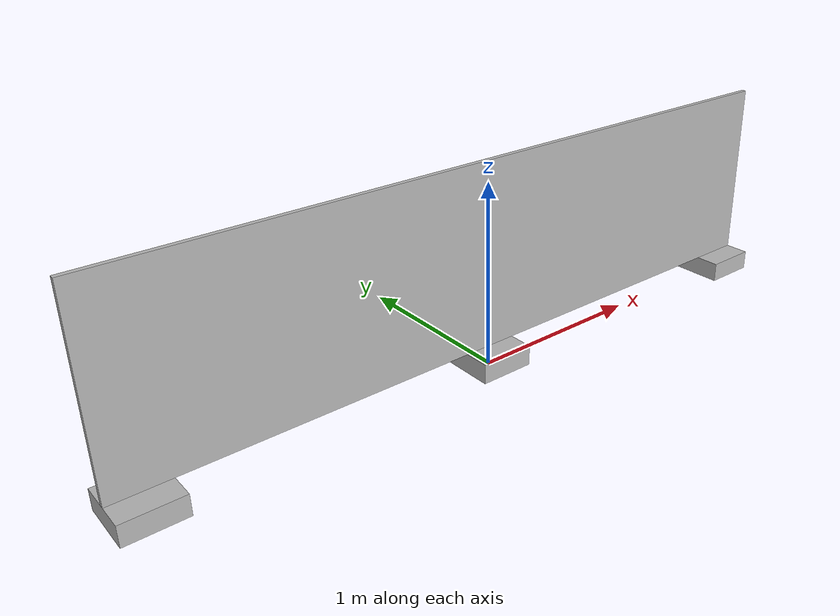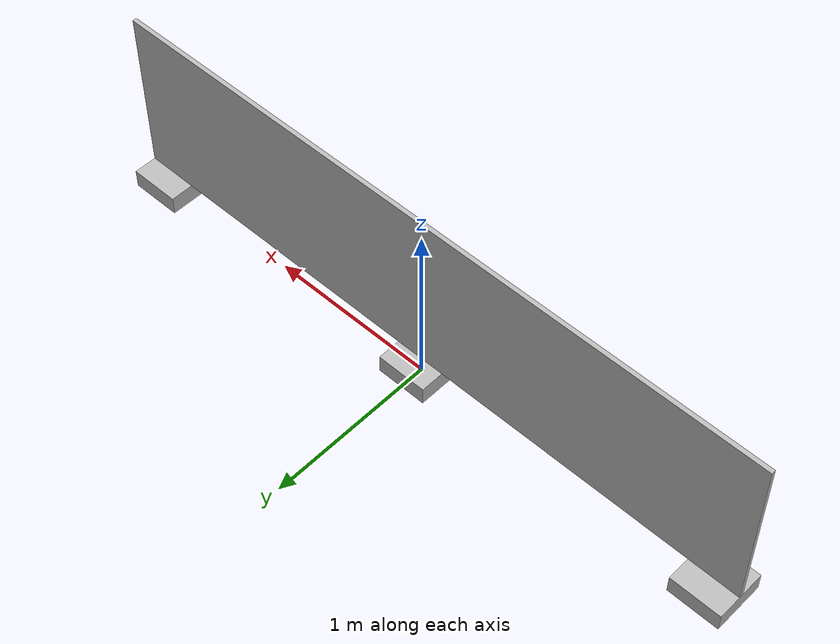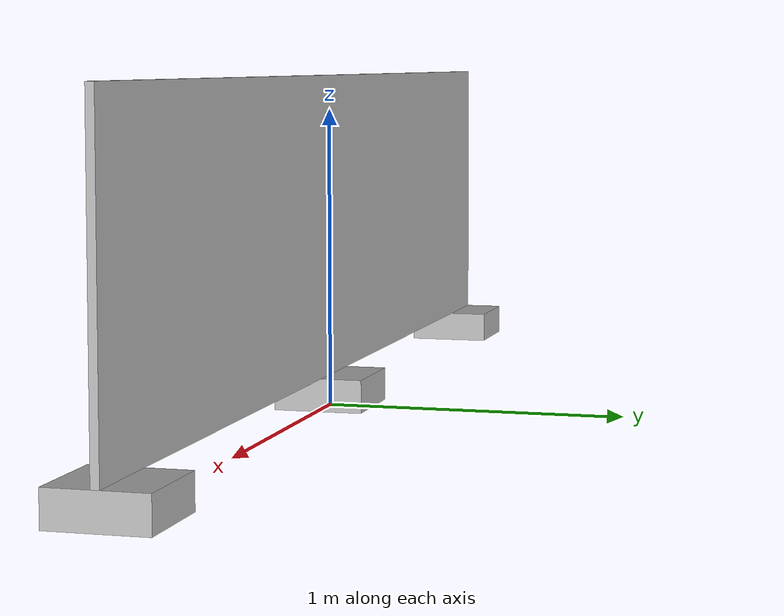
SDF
<?xml version="1.0"?>
<sdf version="1.6">
  <model name="impuls/thin_wall" type="wall">
    <static>true</static>
    <link name="wall">
      <collision name="wall_col">
        <geometry>
          <box>
            <size>4.01 0.025 1.005</size>
          </box>
        </geometry>
      </collision>
      <visual name="wall_vis">
        <geometry>
          <box>
            <size>4.01 0.025 1.005</size>
          </box>
        </geometry>
      </visual>
      <pose>0.0 0.0 0.6125 0 0 0</pose>
    </link>
    <link name="block1">
      <collision name="block1_col">
        <geometry>
          <box>
            <size>0.3 0.3 0.11</size>
          </box>
        </geometry>
      </collision>
      <visual name="block1_vis">
        <geometry>
          <box>
            <size>0.3 0.3 0.11</size>
          </box>
        </geometry>
      </visual>
      <pose>0.0 0.0 0.055 0 0 0</pose>
    </link>
    <link name="block2">
      <collision name="block2_col">
        <geometry>
          <box>
            <size>0.3 0.3 0.11</size>
          </box>
        </geometry>
      </collision>
      <visual name="block2_vis">
        <geometry>
          <box>
            <size>0.3 0.3 0.11</size>
          </box>
        </geometry>
      </visual>
      <pose>1.855 0.0 0.055 0 0 0</pose>
    </link>
    <link name="block3">
      <collision name="block3_col">
        <geometry>
          <box>
            <size>0.3 0.3 0.11</size>
          </box>
        </geometry>
      </collision>
      <visual name="block3_vis">
        <geometry>
          <box>
            <size>0.3 0.3 0.11</size>
          </box>
        </geometry>
      </visual>
      <pose>-1.855 0.0 0.055 0 0 0</pose>
    </link>
  </model>
</sdf>
